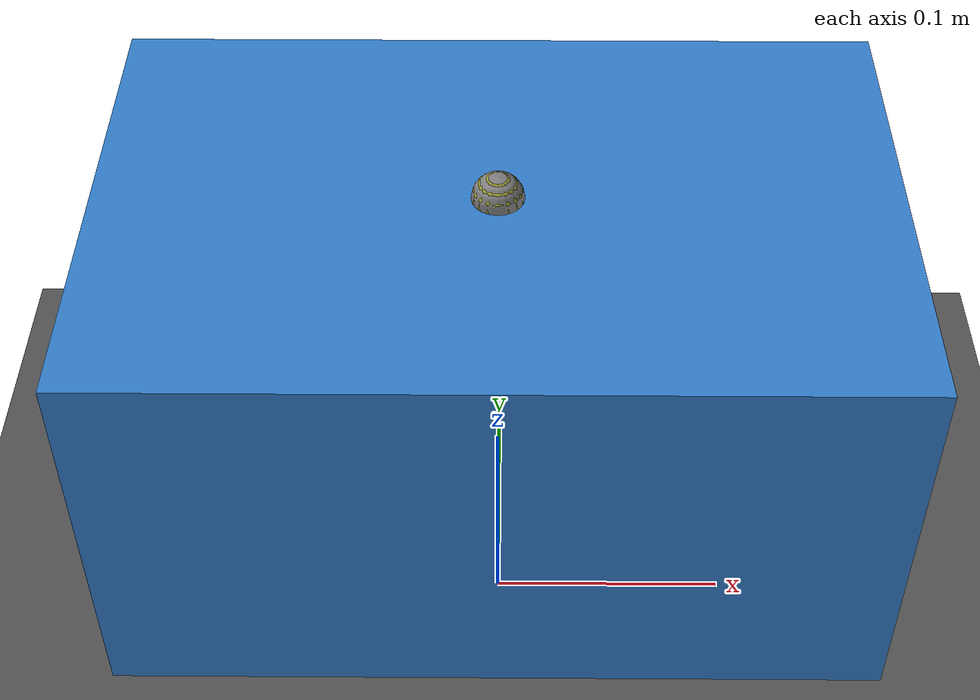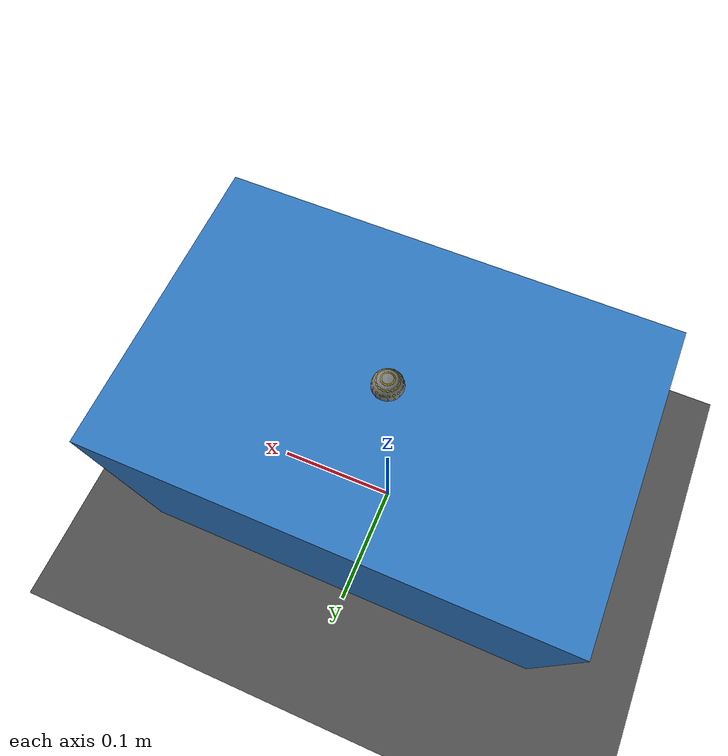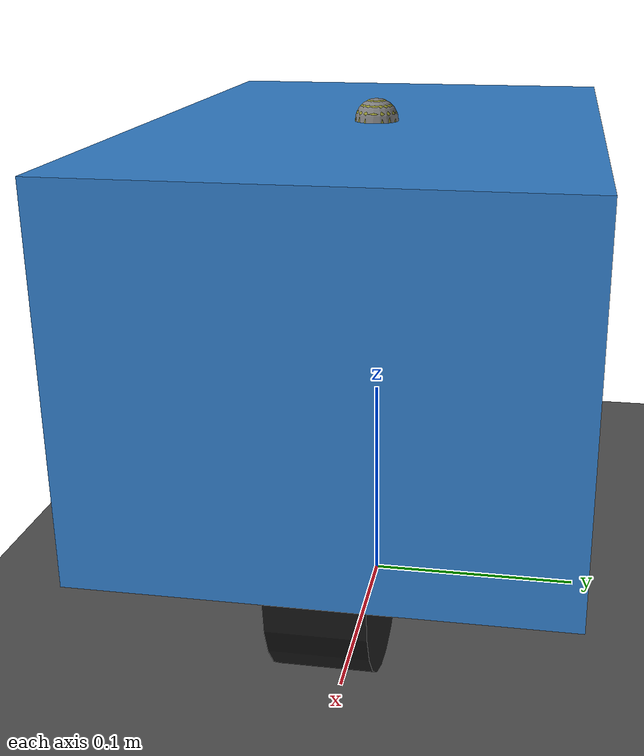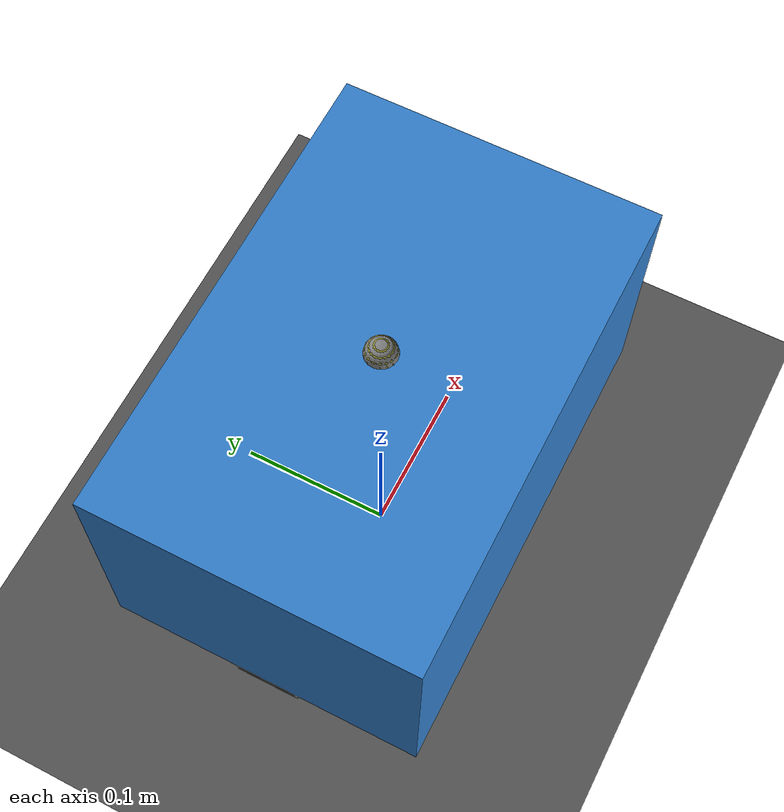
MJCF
<?xml version="1.0" ?>
<mujoco model="cart_pendulum_planar">
  <compiler angle="degree" coordinate="local"/>
  <option gravity="0 0 -9.81" timestep="0.001" integrator="RK4"/>
  <asset>
    <texture name="texgrid" type="2d" builtin="checker"
             rgb1="0.3 0.3 0.3" rgb2="0.35 0.35 0.35" width="512" height="512"/>
    <material name="mat_ground" texture="texgrid" texrepeat="4 4"/>
  </asset>

  <worldbody>
    <geom name="ground" type="plane" pos="0 0 0" size="5 5 0.01" material="mat_ground"/>

    <body name="cart" pos="0 0 0.15">
      <joint name="slider" type="slide" axis="1 0 0" damping="5" frictionloss="1"/>
      <geom name="cart_box" type="box" size="0.15 0.1 0.08" rgba="0.2 0.5 0.8 1"/>
      <geom name="wheel_left" type="cylinder" pos="-0.1 0 -0.08" size="0.05 0.02"
            euler="90 0 0" rgba="0.1 0.1 0.1 1" contype="0" conaffinity="0"/>
      <geom name="wheel_right" type="cylinder" pos="0.1 0 -0.08" size="0.05 0.02"
            euler="90 0 0" rgba="0.1 0.1 0.1 1" contype="0" conaffinity="0"/>
      <site name="pivot" pos="0 0 0.08" size="0.01"/>

      <body name="pendulum" pos="0 0 0.08">
        <joint name="theta" type="hinge" axis="0 1 0" damping="0.01"/>
        <inertial pos="0 0 -0.1" mass="0.6" diaginertia="0.0004 0.0004 0.0004"/>
        <geom name="rod" type="capsule" fromto="0 0 0  0 0 -0.2" size="0.01"
              rgba="0.6 0.6 0.2 1"/>
        <geom name="bob" type="sphere" pos="0 0 -0.2" size="0.03" rgba="0.9 0.3 0.3 1"/>
      </body>
    </body>
  </worldbody>

  <actuator>
    <velocity name="cart_vel" joint="slider" kv="200" ctrllimited="true" ctrlrange="-5 5"/>
  </actuator>

  <sensor>
    <jointpos joint="slider" name="x_cart"/>
    <jointvel joint="slider" name="v_cart"/>
    <jointpos joint="theta" name="theta"/>
    <jointvel joint="theta" name="omega_theta"/>
    <actuatorfrc actuator="cart_vel" name="cart_force_sensed"/>
    <framepos objtype="site" objname="pivot" name="pivot_pos"/>
  </sensor>

  <keyframe>
    <key qpos="0 10" qvel="0 0"/>
  </keyframe>
</mujoco>
